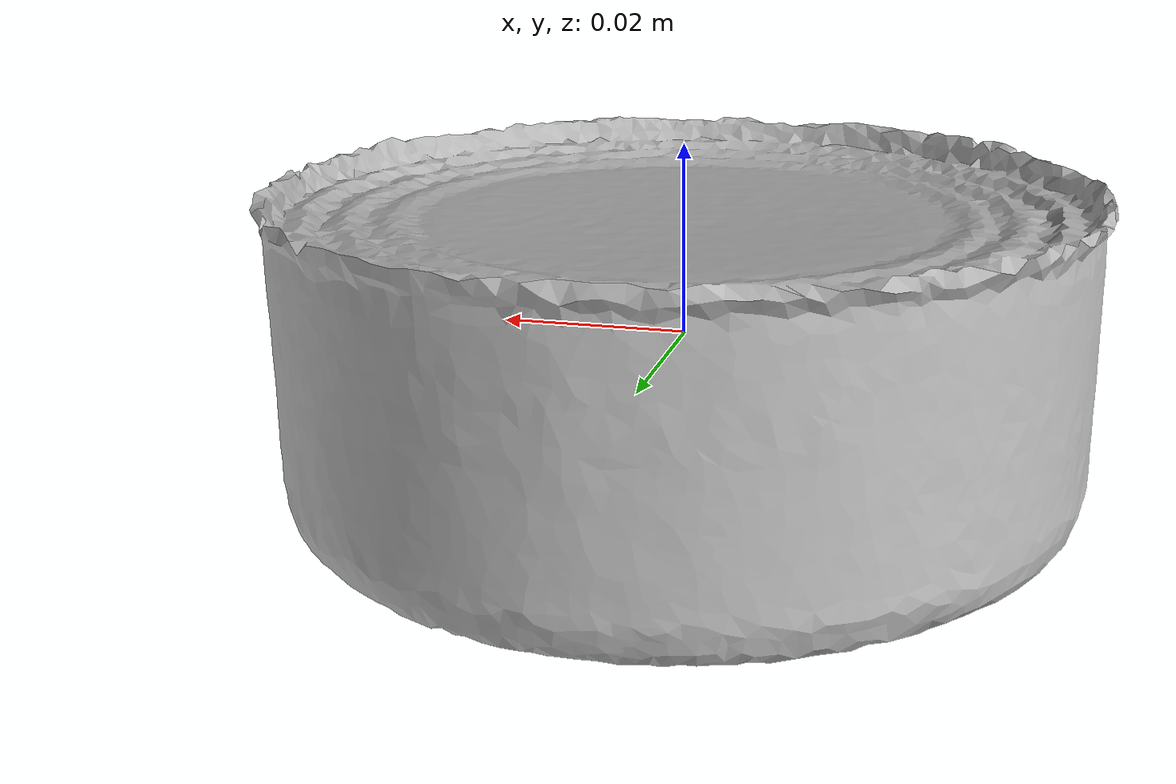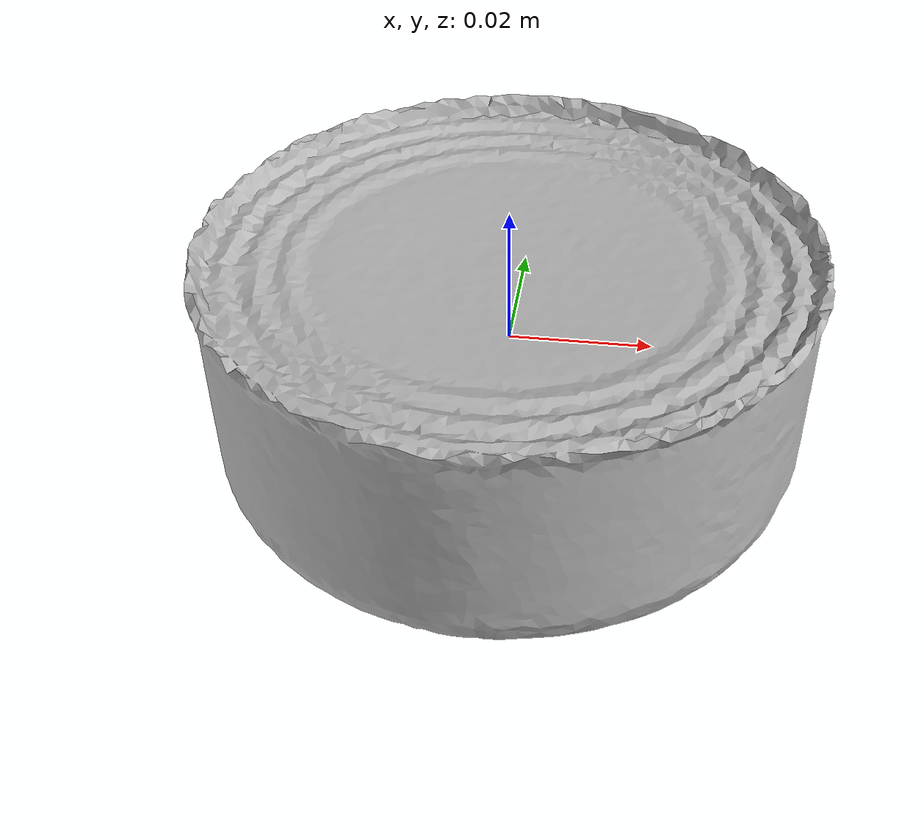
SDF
<?xml version="1.0" ?>
<sdf version="1.7">
<!--
This SDF file was automatically generated using a template modified
and authored by Jinjian Li. The moment of interia is not supposed to be changed.
-->
    <model name="obj_000006">
      <pose>0.0 0.0 0.0 0.0 0.0 0.0</pose>
      <link name="link">
        <inertial>
          <inertia>
           <ixx>0.00011909409531310457</ixx>
           <ixy>4.50729715477828e-08</ixy>
           <ixz>1.951198382447766e-08</ixz>
           <iyy>0.00011921056975944141</iyy>
           <iyz>1.175861863077379e-08</iyz>
           <izz>0.00020881509634278265</izz>
          </inertia>
          <mass>0.2287520683881182</mass>
        </inertial>
        <collision name="collision">
          <geometry>
            <mesh>
             <uri>obj_000006.obj</uri>
             <scale>1 1 1</scale>
            </mesh>
          </geometry>
        </collision>

        <visual name="visual">
          <geometry>
            <mesh>
             <uri>obj_000006.obj</uri>
             <scale>1 1 1</scale>
            </mesh>
          </geometry>
        </visual>
      </link>
    </model>
</sdf>
